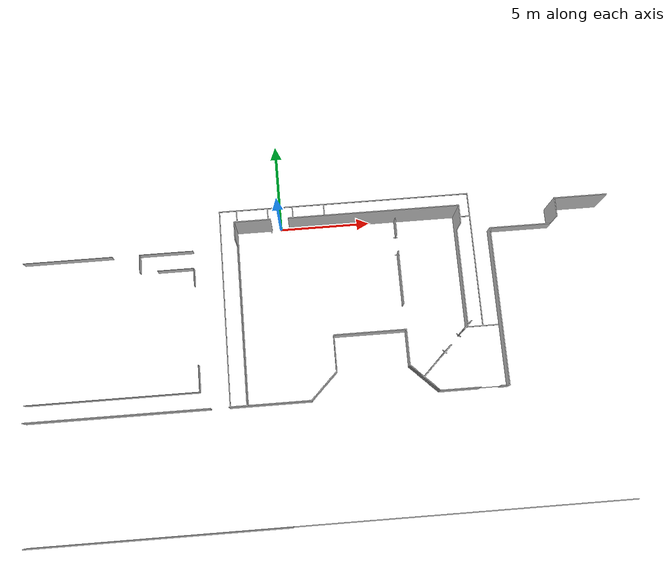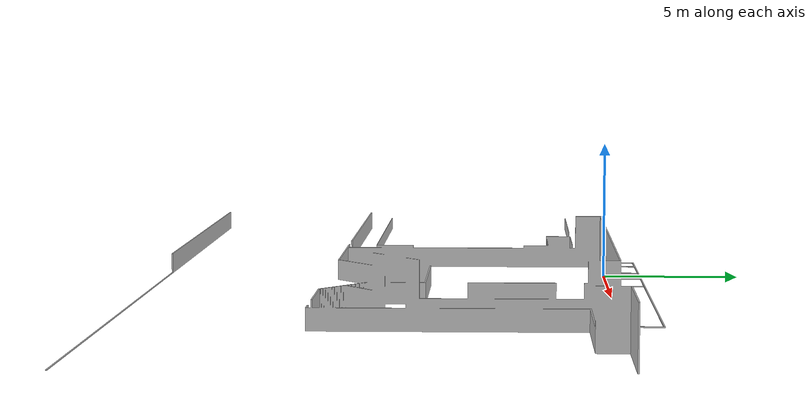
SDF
<?xml version="1.0"?>
<sdf version="1.6">
  <model name="rwc2017/walls">
    <link name="1_link">
      <collision name="1_col">
        <geometry>
          <mesh>
            <uri>model://rwc2017/walls/shape/heightmap.stl</uri>
          </mesh>
        </geometry>
      </collision>
      <visual name="1_vis">
        <geometry>
          <mesh>
            <uri>model://rwc2017/walls/shape/heightmap.stl</uri>
          </mesh>
        </geometry>
      </visual>
      <pose>0 0 0 0 0 0</pose>
    </link>
    <static>true</static>
  </model>
</sdf>
